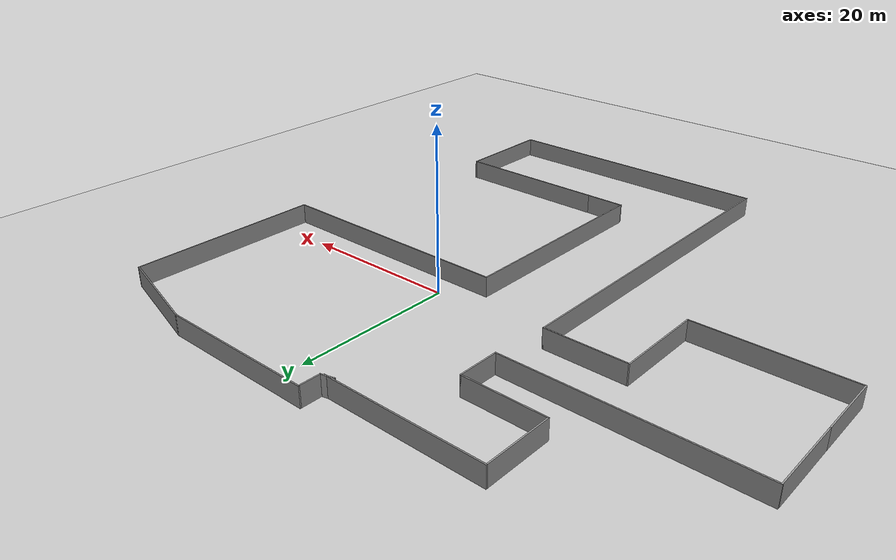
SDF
<sdf version="1.7">
 <world name="default">
  <light name="sun" type="directional">
   <pose>0 0 10 0 -0 0</pose>
   <diffuse>0.8 0.8 0.8 1</diffuse>
   <specular>0.2 0.2 0.2 1</specular>
   <attenuation>
    <range>1000</range>
    <constant>0.9</constant>
    <linear>0.01</linear>
    <quadratic>0.001</quadratic>
   </attenuation>
   <direction>-0.5 0.1 -0.9</direction>
   <spot><inner_angle>0</inner_angle><outer_angle>0</outer_angle><falloff>0</falloff></spot>
  </light>
  <model name="ground_plane">
   <static>1</static>
   <link name="link">
    <collision name="collision">
     <geometry><plane><normal>0 0 1</normal><size>100 100</size></plane></geometry>
     <surface>
      <contact><collide_bitmask>65535</collide_bitmask></contact>
      <friction><ode><mu>100</mu><mu2>50</mu2></ode></friction>
     </surface>
    </collision>
    <visual name="visual">
     <cast_shadows>0</cast_shadows>
     <geometry><plane><normal>0 0 1</normal><size>100 100</size></plane></geometry>
     <material>
      <script><uri>file://media/materials/scripts/gazebo.material</uri><name>Gazebo/Grey</name></script>
     </material>
    </visual>
   </link>
  </model>
  <gravity>0 0 -9.8</gravity>
  <magnetic_field>6e-06 2.3e-05 -4.2e-05</magnetic_field>
  <atmosphere type="adiabatic"/>
  <physics type="ode">
   <max_step_size>0.001</max_step_size>
   <real_time_factor>1</real_time_factor>
   <real_time_update_rate>1000</real_time_update_rate>
  </physics>
  <scene><ambient>0.4 0.4 0.4 1</ambient><background>0.7 0.7 0.7 1</background><shadows>1</shadows></scene>
  <spherical_coordinates>
   <surface_model>EARTH_WGS84</surface_model>
   <latitude_deg>0</latitude_deg>
   <longitude_deg>0</longitude_deg>
   <elevation>0</elevation>
   <heading_deg>0</heading_deg>
  </spherical_coordinates>
  <model name="joeee">
   <pose>-8.66694 -9.47076 0 0 -0 0</pose>
   <link name="Wall_0">
    <collision name="Wall_0_Collision">
     <geometry><box><size>19.75 0.15 2.5</size></box></geometry>
     <pose>0 0 1.25 0 -0 0</pose>
    </collision>
    <visual name="Wall_0_Visual">
     <pose>0 0 1.25 0 -0 0</pose>
     <geometry><box><size>19.75 0.15 2.5</size></box></geometry>
     <material>
      <script><uri>file://media/materials/scripts/gazebo.material</uri><name>Gazebo/Grey</name></script>
      <ambient>1 1 1 1</ambient>
     </material>
     <meta><layer>0</layer></meta>
    </visual>
    <pose>-6.93343 31.4213 0 0 -0 3.14159</pose>
   </link>
   <link name="Wall_1">
    <collision name="Wall_1_Collision">
     <geometry><box><size>8.5 0.15 2.5</size></box></geometry>
     <pose>0 0 1.25 0 -0 0</pose>
    </collision>
    <visual name="Wall_1_Visual">
     <pose>0 0 1.25 0 -0 0</pose>
     <geometry><box><size>8.5 0.15 2.5</size></box></geometry>
     <material>
      <script><uri>file://media/materials/scripts/gazebo.material</uri><name>Gazebo/Grey</name></script>
      <ambient>1 1 1 1</ambient>
     </material>
     <meta><layer>0</layer></meta>
    </visual>
    <pose>-16.7334 27.2463 0 0 -0 -1.5708</pose>
   </link>
   <link name="Wall_10">
    <collision name="Wall_10_Collision">
     <geometry><box><size>45.5 0.15 2.5</size></box></geometry>
     <pose>0 0 1.25 0 -0 0</pose>
    </collision>
    <visual name="Wall_10_Visual">
     <pose>0 0 1.25 0 -0 0</pose>
     <geometry><box><size>45.5 0.15 2.5</size></box></geometry>
     <material>
      <script><uri>file://media/materials/scripts/gazebo.material</uri><name>Gazebo/Grey</name></script>
      <ambient>1 1 1 1</ambient>
     </material>
     <meta><layer>0</layer></meta>
    </visual>
    <pose>-7.28343 -11.5537 0 0 -0 -1.5708</pose>
   </link>
   <link name="Wall_11">
    <collision name="Wall_11_Collision">
     <geometry><box><size>36.5 0.15 2.5</size></box></geometry>
     <pose>0 0 1.25 0 -0 0</pose>
    </collision>
    <visual name="Wall_11_Visual">
     <pose>0 0 1.25 0 -0 0</pose>
     <geometry><box><size>36.5 0.15 2.5</size></box></geometry>
     <material>
      <script><uri>file://media/materials/scripts/gazebo.material</uri><name>Gazebo/Grey</name></script>
      <ambient>1 1 1 1</ambient>
     </material>
     <meta><layer>0</layer></meta>
    </visual>
    <pose>10.8916 -34.2287 0 0 -0 0</pose>
   </link>
   <link name="Wall_12">
    <collision name="Wall_12_Collision">
     <geometry><box><size>13.25 0.15 2.5</size></box></geometry>
     <pose>0 0 1.25 0 -0 0</pose>
    </collision>
    <visual name="Wall_12_Visual">
     <pose>0 0 1.25 0 -0 0</pose>
     <geometry><box><size>13.25 0.15 2.5</size></box></geometry>
     <material>
      <script><uri>file://media/materials/scripts/gazebo.material</uri><name>Gazebo/Grey</name></script>
      <ambient>1 1 1 1</ambient>
     </material>
     <meta><layer>0</layer></meta>
    </visual>
    <pose>29.0666 -27.6787 0 0 -0 1.5708</pose>
   </link>
   <link name="Wall_13">
    <collision name="Wall_13_Collision">
     <geometry><box><size>20 0.15 2.5</size></box></geometry>
     <pose>0 0 1.25 0 -0 0</pose>
    </collision>
    <visual name="Wall_13_Visual">
     <pose>0 0 1.25 0 -0 0</pose>
     <geometry><box><size>20 0.15 2.5</size></box></geometry>
     <material>
      <script><uri>file://media/materials/scripts/gazebo.material</uri><name>Gazebo/Grey</name></script>
      <ambient>1 1 1 1</ambient>
     </material>
     <meta><layer>0</layer></meta>
    </visual>
    <pose>19.1416 -21.1287 0 0 -0 3.14159</pose>
   </link>
   <link name="Wall_14">
    <collision name="Wall_14_Collision">
     <geometry><box><size>5.25 0.15 2.5</size></box></geometry>
     <pose>0 0 1.25 0 -0 0</pose>
    </collision>
    <visual name="Wall_14_Visual">
     <pose>0 0 1.25 0 -0 0</pose>
     <geometry><box><size>5.25 0.15 2.5</size></box></geometry>
     <material>
      <script><uri>file://media/materials/scripts/gazebo.material</uri><name>Gazebo/Grey</name></script>
      <ambient>1 1 1 1</ambient>
     </material>
     <meta><layer>0</layer></meta>
    </visual>
    <pose>6.66657 -21.1287 0 0 -0 3.14159</pose>
   </link>
   <link name="Wall_15">
    <collision name="Wall_15_Collision">
     <geometry><box><size>27.75 0.15 2.5</size></box></geometry>
     <pose>0 0 1.25 0 -0 0</pose>
    </collision>
    <visual name="Wall_15_Visual">
     <pose>0 0 1.25 0 -0 0</pose>
     <geometry><box><size>27.75 0.15 2.5</size></box></geometry>
     <material>
      <script><uri>file://media/materials/scripts/gazebo.material</uri><name>Gazebo/Grey</name></script>
      <ambient>1 1 1 1</ambient>
     </material>
     <meta><layer>0</layer></meta>
    </visual>
    <pose>4.11657 -7.32869 0 0 -0 1.5708</pose>
   </link>
   <link name="Wall_16">
    <collision name="Wall_16_Collision">
     <geometry><box><size>31.5 0.15 2.5</size></box></geometry>
     <pose>0 0 1.25 0 -0 0</pose>
    </collision>
    <visual name="Wall_16_Visual">
     <pose>0 0 1.25 0 -0 0</pose>
     <geometry><box><size>31.5 0.15 2.5</size></box></geometry>
     <material>
      <script><uri>file://media/materials/scripts/gazebo.material</uri><name>Gazebo/Grey</name></script>
      <ambient>1 1 1 1</ambient>
     </material>
     <meta><layer>0</layer></meta>
    </visual>
    <pose>19.7916 6.47131 0 0 -0 0</pose>
   </link>
   <link name="Wall_17">
    <collision name="Wall_17_Collision">
     <geometry><box><size>24.5 0.15 2.5</size></box></geometry>
     <pose>0 0 1.25 0 -0 0</pose>
    </collision>
    <visual name="Wall_17_Visual">
     <pose>0 0 1.25 0 -0 0</pose>
     <geometry><box><size>24.5 0.15 2.5</size></box></geometry>
     <material>
      <script><uri>file://media/materials/scripts/gazebo.material</uri><name>Gazebo/Grey</name></script>
      <ambient>1 1 1 1</ambient>
     </material>
     <meta><layer>0</layer></meta>
    </visual>
    <pose>35.4666 18.6463 0 0 -0 1.5708</pose>
   </link>
   <link name="Wall_18">
    <collision name="Wall_18_Collision">
     <geometry><box><size>13.25 0.15 2.5</size></box></geometry>
     <pose>0 0 1.25 0 -0 0</pose>
    </collision>
    <visual name="Wall_18_Visual">
     <pose>0 0 1.25 0 -0 0</pose>
     <geometry><box><size>13.25 0.15 2.5</size></box></geometry>
     <material>
      <script><uri>file://media/materials/scripts/gazebo.material</uri><name>Gazebo/Grey</name></script>
      <ambient>1 1 1 1</ambient>
     </material>
     <meta><layer>0</layer></meta>
    </visual>
    <pose>29.1398 32.5166 0 0 -0 2.87979</pose>
   </link>
   <link name="Wall_19">
    <collision name="Wall_19_Collision">
     <geometry><box><size>19.75 0.15 2.5</size></box></geometry>
     <pose>0 0 1.25 0 -0 0</pose>
    </collision>
    <visual name="Wall_19_Visual">
     <pose>0 0 1.25 0 -0 0</pose>
     <geometry><box><size>19.75 0.15 2.5</size></box></geometry>
     <material>
      <script><uri>file://media/materials/scripts/gazebo.material</uri><name>Gazebo/Grey</name></script>
      <ambient>1 1 1 1</ambient>
     </material>
     <meta><layer>0</layer></meta>
    </visual>
    <pose>13.0129 34.2118 0 0 -0 3.14159</pose>
   </link>
   <link name="Wall_2">
    <collision name="Wall_2_Collision">
     <geometry><box><size>10.25 0.15 2.5</size></box></geometry>
     <pose>0 0 1.25 0 -0 0</pose>
    </collision>
    <visual name="Wall_2_Visual">
     <pose>0 0 1.25 0 -0 0</pose>
     <geometry><box><size>10.25 0.15 2.5</size></box></geometry>
     <material>
      <script><uri>file://media/materials/scripts/gazebo.material</uri><name>Gazebo/Grey</name></script>
      <ambient>1 1 1 1</ambient>
     </material>
     <meta><layer>0</layer></meta>
    </visual>
    <pose>-11.6834 23.0713 0 0 -0 0</pose>
   </link>
   <link name="Wall_20">
    <collision name="Wall_20_Collision">
     <geometry><box><size>2.75 0.15 2.5</size></box></geometry>
     <pose>0 0 1.25 0 -0 0</pose>
    </collision>
    <visual name="Wall_20_Visual">
     <pose>0 0 1.25 0 -0 0</pose>
     <geometry><box><size>2.75 0.15 2.5</size></box></geometry>
     <material>
      <script><uri>file://media/materials/scripts/gazebo.material</uri><name>Gazebo/Grey</name></script>
      <ambient>1 1 1 1</ambient>
     </material>
     <meta><layer>0</layer></meta>
    </visual>
    <pose>3.21294 32.9118 0 0 -0 -1.5708</pose>
   </link>
   <link name="Wall_21">
    <collision name="Wall_21_Collision">
     <geometry><box><size>1.75 0.15 2.5</size></box></geometry>
     <pose>0 0 1.25 0 -0 0</pose>
    </collision>
    <visual name="Wall_21_Visual">
     <pose>0 0 1.25 0 -0 0</pose>
     <geometry><box><size>1.75 0.15 2.5</size></box></geometry>
     <material>
      <script><uri>file://media/materials/scripts/gazebo.material</uri><name>Gazebo/Grey</name></script>
      <ambient>1 1 1 1</ambient>
     </material>
     <meta><layer>0</layer></meta>
    </visual>
    <pose>2.4402 31.4048 0 0 -0 -2.87979</pose>
   </link>
   <link name="Wall_3">
    <collision name="Wall_3_Collision">
     <geometry><box><size>5.25 0.15 2.5</size></box></geometry>
     <pose>0 0 1.25 0 -0 0</pose>
    </collision>
    <visual name="Wall_3_Visual">
     <pose>0 0 1.25 0 -0 0</pose>
     <geometry><box><size>5.25 0.15 2.5</size></box></geometry>
     <material>
      <script><uri>file://media/materials/scripts/gazebo.material</uri><name>Gazebo/Grey</name></script>
      <ambient>1 1 1 1</ambient>
     </material>
     <meta><layer>0</layer></meta>
    </visual>
    <pose>-6.63343 20.5213 0 0 -0 -1.5708</pose>
   </link>
   <link name="Wall_4">
    <collision name="Wall_4_Collision">
     <geometry><box><size>29 0.15 2.5</size></box></geometry>
     <pose>0 0 1.25 0 -0 0</pose>
    </collision>
    <visual name="Wall_4_Visual">
     <pose>0 0 1.25 0 -0 0</pose>
     <geometry><box><size>29 0.15 2.5</size></box></geometry>
     <material>
      <script><uri>file://media/materials/scripts/gazebo.material</uri><name>Gazebo/Grey</name></script>
      <ambient>1 1 1 1</ambient>
     </material>
     <meta><layer>0</layer></meta>
    </visual>
    <pose>-21.0584 17.9713 0 0 -0 3.14159</pose>
   </link>
   <link name="Wall_5">
    <collision name="Wall_5_Collision">
     <geometry><box><size>9.75 0.15 2.5</size></box></geometry>
     <pose>0 0 1.25 0 -0 0</pose>
    </collision>
    <visual name="Wall_5_Visual">
     <pose>0 0 1.25 0 -0 0</pose>
     <geometry><box><size>9.75 0.15 2.5</size></box></geometry>
     <material>
      <script><uri>file://media/materials/scripts/gazebo.material</uri><name>Gazebo/Grey</name></script>
      <ambient>1 1 1 1</ambient>
     </material>
     <meta><layer>0</layer></meta>
    </visual>
    <pose>-35.4834 13.1713 0 0 -0 -1.5708</pose>
   </link>
   <link name="Wall_6">
    <collision name="Wall_6_Collision">
     <geometry><box><size>8.5 0.15 2.5</size></box></geometry>
     <pose>0 0 1.25 0 -0 0</pose>
    </collision>
    <visual name="Wall_6_Visual">
     <pose>0 0 1.25 0 -0 0</pose>
     <geometry><box><size>8.5 0.15 2.5</size></box></geometry>
     <material>
      <script><uri>file://media/materials/scripts/gazebo.material</uri><name>Gazebo/Grey</name></script>
      <ambient>1 1 1 1</ambient>
     </material>
     <meta><layer>0</layer></meta>
    </visual>
    <pose>-35.4834 4.19631 0 0 -0 -1.5708</pose>
   </link>
   <link name="Wall_7">
    <collision name="Wall_7_Collision">
     <geometry><box><size>18.25 0.15 2.5</size></box></geometry>
     <pose>0 0 1.25 0 -0 0</pose>
    </collision>
    <visual name="Wall_7_Visual">
     <pose>0 0 1.25 0 -0 0</pose>
     <geometry><box><size>18.25 0.15 2.5</size></box></geometry>
     <material>
      <script><uri>file://media/materials/scripts/gazebo.material</uri><name>Gazebo/Grey</name></script>
      <ambient>1 1 1 1</ambient>
     </material>
     <meta><layer>0</layer></meta>
    </visual>
    <pose>-26.4334 0.021309 0 0 -0 0</pose>
   </link>
   <link name="Wall_8">
    <collision name="Wall_8_Collision">
     <geometry><box><size>11.25 0.15 2.5</size></box></geometry>
     <pose>0 0 1.25 0 -0 0</pose>
    </collision>
    <visual name="Wall_8_Visual">
     <pose>0 0 1.25 0 -0 0</pose>
     <geometry><box><size>11.25 0.15 2.5</size></box></geometry>
     <material>
      <script><uri>file://media/materials/scripts/gazebo.material</uri><name>Gazebo/Grey</name></script>
      <ambient>1 1 1 1</ambient>
     </material>
     <meta><layer>0</layer></meta>
    </visual>
    <pose>-17.3834 5.57131 0 0 -0 1.5708</pose>
   </link>
   <link name="Wall_9">
    <collision name="Wall_9_Collision">
     <geometry><box><size>10.25 0.15 2.5</size></box></geometry>
     <pose>0 0 1.25 0 -0 0</pose>
    </collision>
    <visual name="Wall_9_Visual">
     <pose>0 0 1.25 0 -0 0</pose>
     <geometry><box><size>10.25 0.15 2.5</size></box></geometry>
     <material>
      <script><uri>file://media/materials/scripts/gazebo.material</uri><name>Gazebo/Grey</name></script>
      <ambient>1 1 1 1</ambient>
     </material>
     <meta><layer>0</layer></meta>
    </visual>
    <pose>-12.3334 11.1213 0 0 -0 0</pose>
   </link>
   <static>1</static>
  </model>
 </world>
</sdf>
